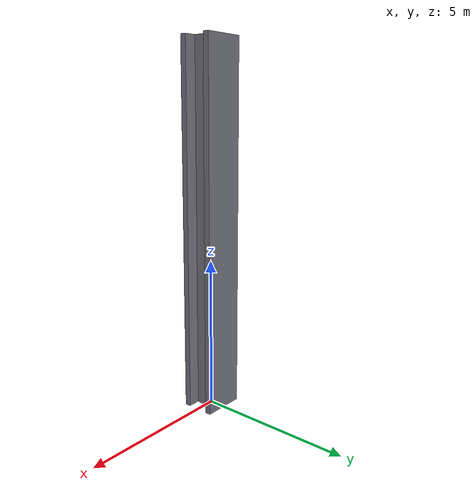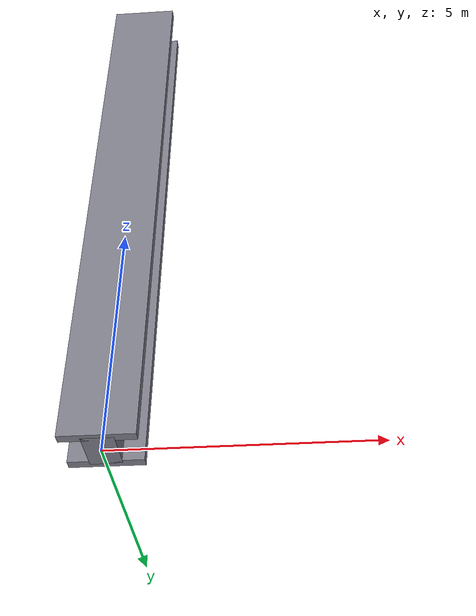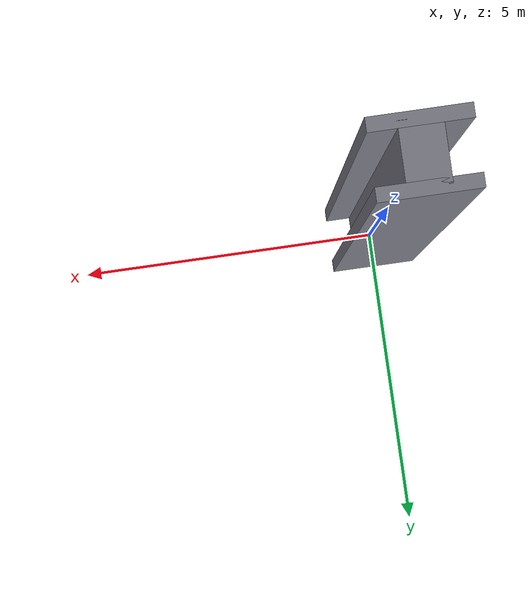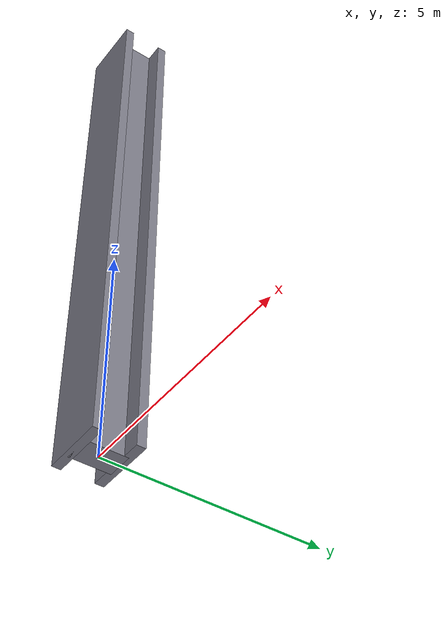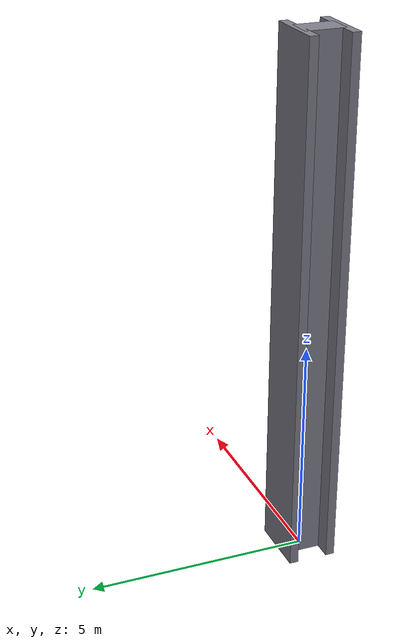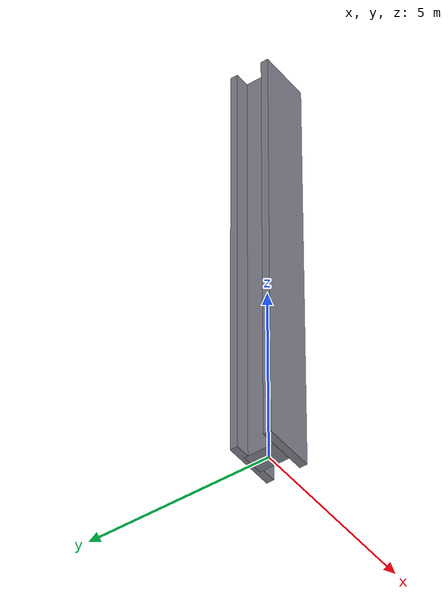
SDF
<?xml version="1.0"?>
<sdf version="1.8">
  <model name="landmark_post">
    <static>true</static>
    <link name="link">
      <pose>0 0 6.0 0 0 0</pose>

      <!-- +y flange -->
      <collision name="flange_a_col">
        <pose>0 0.45 0 0 0 0</pose>
        <geometry><box><size>1.40 0.20 12.0</size></box></geometry>
      </collision>
      <visual name="flange_a">
        <pose>0 0.45 0 0 0 0</pose>
        <geometry><box><size>1.40 0.20 12.0</size></box></geometry>
        <material><ambient>0.45 0.45 0.5 1</ambient><diffuse>0.5 0.5 0.55 1</diffuse></material>
      </visual>

      <!-- web (connects the flanges) -->
      <collision name="web_col">
        <geometry><box><size>0.60 0.90 12.0</size></box></geometry>
      </collision>
      <visual name="web">
        <geometry><box><size>0.60 0.90 12.0</size></box></geometry>
        <material><ambient>0.45 0.45 0.5 1</ambient><diffuse>0.5 0.5 0.55 1</diffuse></material>
      </visual>

      <!-- -y flange -->
      <collision name="flange_b_col">
        <pose>0 -0.45 0 0 0 0</pose>
        <geometry><box><size>1.40 0.20 12.0</size></box></geometry>
      </collision>
      <visual name="flange_b">
        <pose>0 -0.45 0 0 0 0</pose>
        <geometry><box><size>1.40 0.20 12.0</size></box></geometry>
        <material><ambient>0.45 0.45 0.5 1</ambient><diffuse>0.5 0.5 0.55 1</diffuse></material>
      </visual>
    </link>
  </model>
</sdf>
